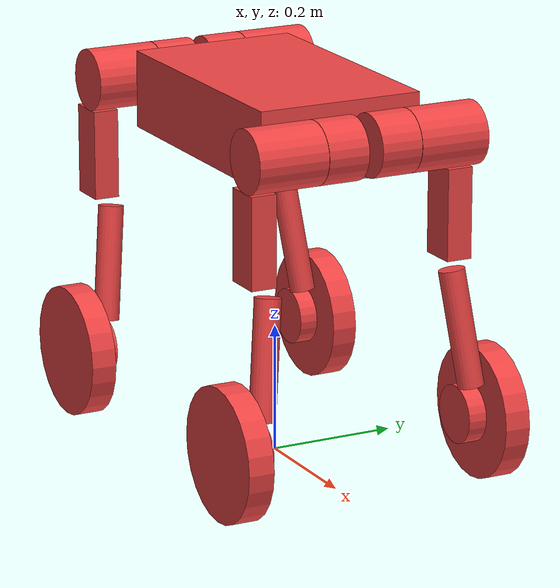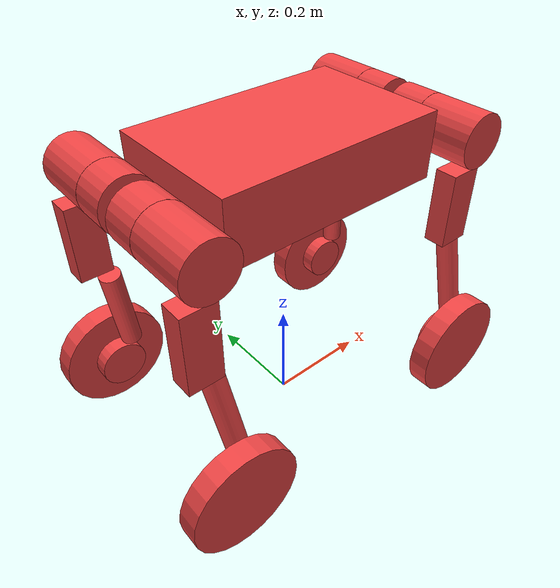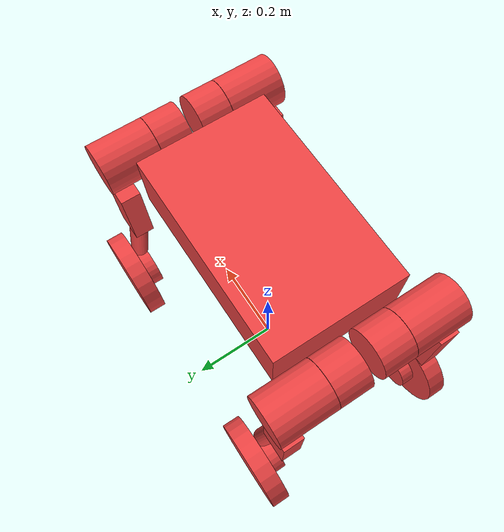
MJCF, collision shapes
<mujoco model="wheel_dog_urdf">
  <compiler angle="radian" meshdir="meshes" />

  <asset>
    <mesh name="base_link" file="meshes/base_link.STL" />
    <mesh name="LF_ABAD_LINK" file="meshes/LF_ABAD_LINK.STL" />
    <mesh name="LF_HIP_LINK" file="meshes/LF_HIP_LINK.STL" />
    <mesh name="LF_KENN_LINK" file="meshes/LF_KENN_LINK.STL" />
    <mesh name="LF_FOOT_LINK" file="meshes/LF_FOOT_LINK.STL" />
    <mesh name="RF_ABAD_LINK" file="meshes/RF_ABAD_LINK.STL" />
    <mesh name="RF_HIP_LINK" file="meshes/RF_HIP_LINK.STL" />
    <mesh name="RF_KENN_LINK" file="meshes/RF_KENN_LINK.STL" />
    <mesh name="RF_FOOT_LINK" file="meshes/RF_FOOT_LINK.STL" />
    <mesh name="LB_ABAD_LINK" file="meshes/LB_ABAD_LINK.STL" />
    <mesh name="LB_HIP_LINK" file="meshes/LB_HIP_LINK.STL" />
    <mesh name="LB_KENN_LINK" file="meshes/LB_KENN_LINK.STL" />
    <mesh name="LB_FOOT_LINK" file="meshes/LB_FOOT_LINK.STL" />
    <mesh name="RB_ABAD_LINK" file="meshes/RB_ABAD_LINK.STL" />
    <mesh name="RB_HIP_LINK" file="meshes/RB_HIP_LINK.STL" />
    <mesh name="RB_KENN_LINK" file="meshes/RB_KENN_LINK.STL" />
    <mesh name="RB_FOOT_LINK" file="meshes/RB_FOOT_LINK.STL" />
    <material name="base_link_mat" rgba="1 1 1 1" specular="0" />
    <material name="LF_ABAD_LINK_mat" rgba="1 1 1 1" specular="0" />
    <material name="LF_HIP_LINK_mat" rgba="1 1 1 1" specular="0" />
    <material name="LF_KENN_LINK_mat" rgba="1 1 1 1" specular="0" />
    <material name="LF_FOOT_LINK_mat" rgba="0.251 0.251 0.251 1" specular="0" />
    <material name="RF_ABAD_LINK_mat" rgba="1 1 1 1" specular="0" />
    <material name="RF_HIP_LINK_mat" rgba="1 1 1 1" specular="0" />
    <material name="RF_KENN_LINK_mat" rgba="1 1 1 1" specular="0" />
    <material name="RF_FOOT_LINK_mat" rgba="0.251 0.251 0.251 1" specular="0" />
    <material name="LB_ABAD_LINK_mat" rgba="1 1 1 1" specular="0" />
    <material name="LB_HIP_LINK_mat" rgba="1 1 1 1" specular="0" />
    <material name="LB_KENN_LINK_mat" rgba="1 1 1 1" specular="0" />
    <material name="LB_FOOT_LINK_mat" rgba="0.251 0.251 0.251 1" specular="0" />
    <material name="RB_ABAD_LINK_mat" rgba="1 1 1 1" specular="0" />
    <material name="RB_HIP_LINK_mat" rgba="1 1 1 1" specular="0" />
    <material name="RB_KENN_LINK_mat" rgba="1 1 1 1" specular="0" />
    <material name="RB_FOOT_LINK_mat" rgba="0.251 0.251 0.251 1" specular="0" />
  </asset>

  <worldbody>
    <body name="base_link" pos="0 0 0.54">
      <camera name="camera1" mode="targetbody" pos="-2.5 0 1.6" target="base_link"/>
      <freejoint/>
      <site name="imu" size="0.01" pos="0.0 0.0 0.0"/>
      <inertial pos="-0.0064993 -0.0009295 0.0021204" mass="7.4975959" fullinertia="0.0589761 0.1812866 0.2224493 0.0000143 0.000089 0.0004461"/>
      <geom pos="0 0 0" group="1" contype="0" conaffinity="0" material="base_link_mat" type="mesh" mesh="base_link" />
      <geom pos="0 0 0" rgba="0.9373 0.2667 0.2667 1" group="3" contype="0" conaffinity="1" friction="1.5 1.2 1.0" type="box" size="0.21 0.13 0.06" />
      <body name="LF_ABAD_LINK" pos="0.26915 0.07715 0.007">
        <joint name="LF_ABAD_JOINT" frictionloss="0.2" type="hinge" axis="1 0 0" limited="true" range="-1 1" />
        <inertial pos="-0.0009598 -0.0317346 0" mass="0.8603295" fullinertia="0.0006379 0.0007923 0.0006889 0.0000452 0 0"/>
        <geom pos="0 0 0" group="1" contype="0" conaffinity="0" material="LF_ABAD_LINK_mat" type="mesh" mesh="LF_ABAD_LINK" />
        <geom pos="0 -0.034 0" quat="0.7071068 0.7071068 0 0" rgba="0.9373 0.2667 0.2667 1" group="3" contype="0" conaffinity="1" friction="1.5 1.2 1.0" type="cylinder" size="0.048 0.032" />
        <body name="LF_HIP_LINK" pos="0 0.0674 0">
          <joint name="LF_HIP_JOINT" frictionloss="0.2" type="hinge" axis="0 1 0" limited="true" range="-1.57 3.49" />
          <inertial pos="-0.0028159 -0.0294115 -0.0241435" mass="1.3307055" fullinertia="0.0057683 0.0055296 0.0015633 0.0001375 -0.0003075 0.000976"/>
          <geom pos="0 0 0" group="1" contype="0" conaffinity="0" material="LF_HIP_LINK_mat" type="mesh" mesh="LF_HIP_LINK" />
          <geom pos="0 -0.014 0" quat="0.7071068 0.7071068 0 0" rgba="0.9373 0.2667 0.2667 1" group="3" contype="0" conaffinity="1" friction="1.5 1.2 1.0" type="cylinder" size="0.048 0.055" />
          <geom pos="-0.02 0.016 -0.12" quat="0.7071068 0.7071068 0 0" rgba="0.9373 0.2667 0.2667 1" group="3" contype="0" conaffinity="1" friction="1.5 1.2 1.0" type="box" size="0.03 0.07 0.02" />
          <body name="LF_KENN_LINK" pos="0 0.011764 -0.2125">
            <joint name="LF_KENN_JOINT" frictionloss="0.2" type="hinge" axis="0 1 0" limited="true" range="-2.7 -0.83" />
            <inertial pos="0.0039019 0.0253379 -0.1888436" mass="0.636513" fullinertia="0.0027405 0.002845 0.0003994 0.0000325 -0.0001755 0.0003959"/>
            <geom pos="0 0 0" group="1" contype="0" conaffinity="0" material="LF_KENN_LINK_mat" type="mesh" mesh="LF_KENN_LINK" />
            <geom pos="0.016 0.006 -0.08" quat="0.9957034 0.0608998 -0.0696263 0.0042585" rgba="0.9373 0.2667 0.2667 1" group="3" contype="0" conaffinity="1" friction="1.5 1.2 1.0" type="cylinder" size="0.02 0.09" />
            <geom pos="0 0.021 -0.22" quat="0.7071068 0.7071068 0 0" rgba="0.9373 0.2667 0.2667 1" group="3" contype="0" conaffinity="1" friction="1.5 1.2 1.0" type="cylinder" size="0.045 0.015" />
            <body name="LF_FOOT_LINK" pos="0 0.052 -0.22006">
              <joint name="LF_FOOT_JOINT" frictionloss="0.2" type="hinge" axis="0 1 0" />
              <inertial pos="-0.0000842 0.0012423 -0.0000301" mass="0.4354423" fullinertia="0.0012979 0.0024981 0.001296 0 0.0000008 0"/>
              <geom pos="0 0 0" group="1" contype="0" conaffinity="0" material="LF_FOOT_LINK_mat" type="mesh" mesh="LF_FOOT_LINK" />
              <geom pos="0.0000371 0.003 -0.0000005" quat="0.7071068 0.7071068 0 0" rgba="0.9373 0.2667 0.2667 1" group="3" contype="0" conaffinity="1" friction="1.5 1.2 1.0" type="cylinder" size="0.1025 0.02" />
            </body>
          </body>
        </body>
      </body>
      <body name="RF_ABAD_LINK" pos="0.26915 -0.07715 0.007">
        <joint name="RF_ABAD_JOINT" frictionloss="0.2" type="hinge" axis="1 0 0" limited="true" range="-1 1" />
        <inertial pos="-0.0009598 0.0317346 0" mass="0.8603295" fullinertia="0.0006379 0.0007923 0.0006889 -0.0000452 0 0"/>
        <geom pos="0 0 0" group="1" contype="0" conaffinity="0" material="RF_ABAD_LINK_mat" type="mesh" mesh="RF_ABAD_LINK" />
        <geom pos="0 0.034 0" quat="0.7071068 -0.7071068 0 0" rgba="0.9373 0.2667 0.2667 1" group="3" contype="0" conaffinity="1" friction="1.5 1.2 1.0" type="cylinder" size="0.048 0.032" />
        <body name="RF_HIP_LINK" pos="0 -0.0674 0">
          <joint name="RF_HIP_JOINT" frictionloss="0.2" type="hinge" axis="0 1 0" limited="true" range="-1.57 3.49" />
          <inertial pos="-0.0028159 0.0294115 -0.0241435" mass="1.3307055" fullinertia="0.0057683 0.0055296 0.0015633 -0.0001375 -0.0003075 -0.000976"/>
          <geom pos="0 0 0" group="1" contype="0" conaffinity="0" material="RF_HIP_LINK_mat" type="mesh" mesh="RF_HIP_LINK" />
          <geom pos="0 0.014 0" quat="0.7071068 -0.7071068 0 0" rgba="0.9373 0.2667 0.2667 1" group="3" contype="0" conaffinity="1" friction="1.5 1.2 1.0" type="cylinder" size="0.048 0.055" />
          <geom pos="-0.02 -0.016 -0.12" quat="0.7071068 -0.7071068 0 0" rgba="0.9373 0.2667 0.2667 1" group="3" contype="0" conaffinity="1" friction="1.5 1.2 1.0" type="box" size="0.03 0.07 0.02" />
          <body name="RF_KENN_LINK" pos="0 -0.011764 -0.2125">
            <joint name="RF_KENN_JOINT" frictionloss="0.2" type="hinge" axis="0 1 0" limited="true" range="-2.7 -0.83" />
            <inertial pos="0.0039019 -0.0253379 -0.1888436" mass="0.636513" fullinertia="0.0027405 0.002845 0.0003994 -0.0000325 -0.0001755 -0.0003959"/>
            <geom pos="0 0 0" group="1" contype="0" conaffinity="0" material="RF_KENN_LINK_mat" type="mesh" mesh="RF_KENN_LINK" />
            <geom pos="0.016 -0.006 -0.08" quat="0.9957034 -0.0608998 -0.0696263 -0.0042585" rgba="0.9373 0.2667 0.2667 1" group="3" contype="0" conaffinity="1" friction="1.5 1.2 1.0" type="cylinder" size="0.02 0.09" />
            <geom pos="0 -0.021 -0.22" quat="0.7071068 -0.7071068 0 0" rgba="0.9373 0.2667 0.2667 1" group="3" contype="0" conaffinity="1" friction="1.5 1.2 1.0" type="cylinder" size="0.045 0.015" />
            <body name="RF_FOOT_LINK" pos="0 -0.052 -0.22006">
              <joint name="RF_FOOT_JOINT" frictionloss="0.2" type="hinge" axis="0 1 0" />
              <inertial pos="-0.0000842 -0.0012423 -0.0000301" mass="0.4354423" fullinertia="0.0012979 0.0024981 0.001296 0 0.0000008 0"/>
              <geom pos="0 0 0" group="1" contype="0" conaffinity="0" material="RF_FOOT_LINK_mat" type="mesh" mesh="RF_FOOT_LINK" />
              <geom pos="0.0000371 -0.003 -0.0000005" quat="0.7071068 -0.7071068 0 0" rgba="0.9373 0.2667 0.2667 1" group="3" contype="0" conaffinity="1" friction="1.5 1.2 1.0" type="cylinder" size="0.1025 0.02" />
            </body>
          </body>
        </body>
      </body>
      <body name="LB_ABAD_LINK" pos="-0.26885 0.07715 0.007">
        <joint name="LB_ABAD_JOINT" frictionloss="0.2" type="hinge" axis="1 0 0" limited="true" range="-1 1" />
        <inertial pos="0.0009598 -0.0317346 0" mass="0.8603295" fullinertia="0.0006379 0.0007923 0.0006889 -0.0000452 0 0"/>
        <geom pos="0 0 0" group="1" contype="0" conaffinity="0" material="LB_ABAD_LINK_mat" type="mesh" mesh="LB_ABAD_LINK" />
        <geom pos="0 -0.034 0" quat="0.7071068 0.7071068 0 0" rgba="0.9373 0.2667 0.2667 1" group="3" contype="0" conaffinity="1" friction="1.5 1.2 1.0" type="cylinder" size="0.048 0.032" />
        <body name="LB_HIP_LINK" pos="0 0.0674 0">
          <joint name="LB_HIP_JOINT" frictionloss="0.2" type="hinge" axis="0 1 0" limited="true" range="-1.57 3.49" />
          <inertial pos="-0.0027582 -0.0294115 -0.0240635" mass="1.3307055" fullinertia="0.0057764 0.0055352 0.0015608 0.0001403 -0.0003087 0.0009799"/>
          <geom pos="0 0 0" group="1" contype="0" conaffinity="0" material="LB_HIP_LINK_mat" type="mesh" mesh="LB_HIP_LINK" />
          <geom pos="0 -0.014 0" quat="0.7071068 0.7071068 0 0" rgba="0.9373 0.2667 0.2667 1" group="3" contype="0" conaffinity="1" friction="1.5 1.2 1.0" type="cylinder" size="0.048 0.055" />
          <geom pos="-0.02 0.016 -0.12" quat="0.7071068 0.7071068 0 0" rgba="0.9373 0.2667 0.2667 1" group="3" contype="0" conaffinity="1" friction="1.5 1.2 1.0" type="box" size="0.03 0.07 0.0200005" />
          <body name="LB_KENN_LINK" pos="0 0.011764 -0.2125">
            <joint name="LB_KENN_JOINT" frictionloss="0.2" type="hinge" axis="0 1 0" limited="true" range="-2.7 -0.83" />
            <inertial pos="0.0039019 0.0253379 -0.1888436" mass="0.636513" fullinertia="0.0027405 0.002845 0.0003994 0.0000325 -0.0001755 0.0003959"/>
            <geom pos="0 0 0" group="1" contype="0" conaffinity="0" material="LB_KENN_LINK_mat" type="mesh" mesh="LB_KENN_LINK" />
            <geom pos="0.016 0.006 -0.08" quat="0.9957034 0.0608998 -0.0696263 0.0042585" rgba="0.9373 0.2667 0.2667 1" group="3" contype="0" conaffinity="1" friction="1.5 1.2 1.0" type="cylinder" size="0.02 0.09" />
            <geom pos="0 0.021 -0.22" quat="0.7071068 0.7071068 0 0" rgba="0.9373 0.2667 0.2667 1" group="3" contype="0" conaffinity="1" friction="1.5 1.2 1.0" type="cylinder" size="0.045 0.015" />
            <body name="LB_FOOT_LINK" pos="0 0.052 -0.22006">
              <joint name="LB_FOOT_JOINT" frictionloss="0.2" type="hinge" axis="0 1 0" />
              <inertial pos="-0.0000548 0.0044286 -0.0000713" mass="0.4354423" fullinertia="0.0012966 0.0024981 0.0012973 0 0.0000012 0"/>
              <geom pos="0 0 0" group="1" contype="0" conaffinity="0" material="LB_FOOT_LINK_mat" type="mesh" mesh="LB_FOOT_LINK" />
              <geom pos="0.0000371 0.003 -0.0000005" quat="0.7071068 0.7071068 0 0" rgba="0.9373 0.2667 0.2667 1" group="3" contype="0" conaffinity="1" friction="1.5 1.2 1.0" type="cylinder" size="0.1025 0.02" />
            </body>
          </body>
        </body>
      </body>
      <body name="RB_ABAD_LINK" pos="-0.26885 -0.07715 0.007">
        <joint name="RB_ABAD_JOINT" frictionloss="0.2" type="hinge" axis="1 0 0" limited="true" range="-1 1" />
        <inertial pos="0.0009598 0.0317346 0" mass="0.8603295" fullinertia="0.0006379 0.0007923 0.0006889 0.0000452 0 0"/>
        <geom pos="0 0 0" group="1" contype="0" conaffinity="0" material="RB_ABAD_LINK_mat" type="mesh" mesh="RB_ABAD_LINK" />
        <geom pos="0 0.034 0" quat="0.7071068 -0.7071068 0 0" rgba="0.9373 0.2667 0.2667 1" group="3" contype="0" conaffinity="1" friction="1.5 1.2 1.0" type="cylinder" size="0.048 0.032" />
        <body name="RB_HIP_LINK" pos="0 -0.0674 0">
          <joint name="RB_HIP_JOINT" frictionloss="0.2" type="hinge" axis="0 1 0" limited="true" range="-1.57 3.49" />
          <inertial pos="-0.0027582 0.0294115 -0.0240635" mass="1.3307055" fullinertia="0.0057764 0.0055352 0.0015608 -0.0001403 -0.0003087 -0.0009799"/>
          <geom pos="0 0 0" group="1" contype="0" conaffinity="0" material="RB_HIP_LINK_mat" type="mesh" mesh="RB_HIP_LINK" />
          <geom pos="0 0.014 0" quat="0.7071068 -0.7071068 0 0" rgba="0.9373 0.2667 0.2667 1" group="3" contype="0" conaffinity="1" friction="1.5 1.2 1.0" type="cylinder" size="0.048 0.055" />
          <geom pos="-0.02 -0.016 -0.12" quat="0.7071068 -0.7071068 0 0" rgba="0.9373 0.2667 0.2667 1" group="3" contype="0" conaffinity="1" friction="1.5 1.2 1.0" type="box" size="0.03 0.07 0.0200005" />
          <body name="RB_KENN_LINK" pos="0 -0.011764 -0.2125">
            <joint name="RB_KENN_JOINT" frictionloss="0.2" type="hinge" axis="0 1 0" limited="true" range="-2.7 -0.83" />
            <inertial pos="0.0039019 -0.0253379 -0.1888436" mass="0.636513" fullinertia="0.0027405 0.002845 0.0003994 -0.0000325 -0.0001755 -0.0003959"/>
            <geom pos="0 0 0" group="1" contype="0" conaffinity="0" material="RB_KENN_LINK_mat" type="mesh" mesh="RB_KENN_LINK" />
            <geom pos="0.016 -0.006 -0.08" quat="0.9957034 -0.0608998 -0.0696263 -0.0042585" rgba="0.9373 0.2667 0.2667 1" group="3" contype="0" conaffinity="1" friction="1.5 1.2 1.0" type="cylinder" size="0.02 0.09" />
            <geom pos="0 -0.021 -0.22" quat="0.7071068 -0.7071068 0 0" rgba="0.9373 0.2667 0.2667 1" group="3" contype="0" conaffinity="1" friction="1.5 1.2 1.0" type="cylinder" size="0.045 0.015" />
            <body name="RB_FOOT_LINK" pos="0 -0.052 -0.22006">
              <joint name="RB_FOOT_JOINT" frictionloss="0.2" type="hinge" axis="0 1 0" />
              <inertial pos="-0.0000548 -0.0044286 -0.0000713" mass="0.4354423" fullinertia="0.0012966 0.0024981 0.0012973 0 0.0000012 0"/>
              <geom pos="0 0 0" group="1" contype="0" conaffinity="0" material="RB_FOOT_LINK_mat" type="mesh" mesh="RB_FOOT_LINK" />
              <geom pos="0.0000371 -0.003 -0.0000005" quat="0.7071068 -0.7071068 0 0" rgba="0.9373 0.2667 0.2667 1" group="3" contype="0" conaffinity="1" friction="1.5 1.2 1.0" type="cylinder" size="0.1025 0.02" />
            </body>
          </body>
        </body>
      </body>
    </body>
  </worldbody>
  <actuator>

    <position name="LF_ABAD_JOINT" joint="LF_ABAD_JOINT"  forcelimited="true" forcerange="-36. 36." ctrlrange="-1 1"       armature="0.01" kp="66." kv="4."/>
    <position name="LF_HIP_JOINT" joint="LF_HIP_JOINT"    forcelimited="true" forcerange="-36. 36." ctrlrange="-1.57 3.49" armature="0.01" kp="66." kv="4."/>
    <position name="LF_KENN_JOINT" joint="LF_KENN_JOINT"  forcelimited="true" forcerange="-36. 36." ctrlrange="-2.7 -0.83" armature="0.01" kp="66." kv="4."/>
    <velocity name="LF_FOOT_JOINT" joint="LF_FOOT_JOINT"  forcelimited="true" forcerange="-20. 20." ctrlrange="-20. 20."   armature="0.01" kv="3.5"/>
    <position name="RF_ABAD_JOINT" joint="RF_ABAD_JOINT"  forcelimited="true" forcerange="-36. 36." ctrlrange="-1 1"       armature="0.01" kp="66." kv="4."/>
    <position name="RF_HIP_JOINT" joint="RF_HIP_JOINT"    forcelimited="true" forcerange="-36. 36." ctrlrange="-1.57 3.49" armature="0.01" kp="66." kv="4."/>
    <position name="RF_KENN_JOINT" joint="RF_KENN_JOINT"  forcelimited="true" forcerange="-36. 36." ctrlrange="-2.7 -0.83" armature="0.01" kp="66." kv="4."/>
    <velocity name="RF_FOOT_JOINT" joint="RF_FOOT_JOINT"  forcelimited="true" forcerange="-20. 20." ctrlrange="-20. 20."   armature="0.01" kv="3.5"/>
    <position name="LB_ABAD_JOINT" joint="LB_ABAD_JOINT"  forcelimited="true" forcerange="-36. 36." ctrlrange="-1 1"       armature="0.01" kp="66." kv="4."/>
    <position name="LB_HIP_JOINT" joint="LB_HIP_JOINT"    forcelimited="true" forcerange="-36. 36." ctrlrange="-1.57 3.49" armature="0.01" kp="66." kv="4."/>
    <position name="LB_KENN_JOINT" joint="LB_KENN_JOINT"  forcelimited="true" forcerange="-36. 36." ctrlrange="-2.7 -0.83" armature="0.01" kp="66." kv="4."/>
    <velocity name="LB_FOOT_JOINT" joint="LB_FOOT_JOINT"  forcelimited="true" forcerange="-20. 20." ctrlrange="-20. 20."   armature="0.01" kv="3.5"/>
    <position name="RB_ABAD_JOINT" joint="RB_ABAD_JOINT"  forcelimited="true" forcerange="-36. 36." ctrlrange="-1 1"       armature="0.01" kp="66." kv="4."/>
    <position name="RB_HIP_JOINT" joint="RB_HIP_JOINT"    forcelimited="true" forcerange="-36. 36." ctrlrange="-1.57 3.49" armature="0.01" kp="66." kv="4."/>
    <position name="RB_KENN_JOINT" joint="RB_KENN_JOINT"  forcelimited="true" forcerange="-36. 36." ctrlrange="-2.7 -0.83" armature="0.01" kp="66." kv="4."/>
    <velocity name="RB_FOOT_JOINT" joint="RB_FOOT_JOINT"  forcelimited="true" forcerange="-20. 20." ctrlrange="-20. 20."   armature="0.01" kv="3.5"/>

  </actuator>

  <sensor>
    <actuatorpos name="LF_ABAD_JOINT_p" actuator="LF_ABAD_JOINT"/>
    <actuatorpos name="LF_HIP_JOINT_p" actuator="LF_HIP_JOINT"/>
    <actuatorpos name="LF_KENN_JOINT_p" actuator="LF_KENN_JOINT"/>
    <actuatorpos name="LF_FOOT_JOINT_p" actuator="LF_FOOT_JOINT"/>
    <actuatorpos name="RF_ABAD_JOINT_p" actuator="RF_ABAD_JOINT"/>
    <actuatorpos name="RF_HIP_JOINT_p" actuator="RF_HIP_JOINT"/>
    <actuatorpos name="RF_KENN_JOINT_p" actuator="RF_KENN_JOINT"/>
    <actuatorpos name="RF_FOOT_JOINT_p" actuator="RF_FOOT_JOINT"/>
    <actuatorpos name="LB_ABAD_JOINT_p" actuator="LB_ABAD_JOINT"/>
    <actuatorpos name="LB_HIP_JOINT_p" actuator="LB_HIP_JOINT"/>
    <actuatorpos name="LB_KENN_JOINT_p" actuator="LB_KENN_JOINT"/>
    <actuatorpos name="LB_FOOT_JOINT_p" actuator="LB_FOOT_JOINT"/>
    <actuatorpos name="RB_ABAD_JOINT_p" actuator="RB_ABAD_JOINT"/>
    <actuatorpos name="RB_HIP_JOINT_p" actuator="RB_HIP_JOINT"/>
    <actuatorpos name="RB_KENN_JOINT_p" actuator="RB_KENN_JOINT"/>
    <actuatorpos name="RB_FOOT_JOINT_p" actuator="RB_FOOT_JOINT"/>

    <actuatorvel name="LF_ABAD_JOINT_v" actuator="LF_ABAD_JOINT"/>
    <actuatorvel name="LF_HIP_JOINT_v" actuator="LF_HIP_JOINT"/>
    <actuatorvel name="LF_KENN_JOINT_v" actuator="LF_KENN_JOINT"/>
    <actuatorvel name="LF_FOOT_JOINT_v" actuator="LF_FOOT_JOINT"/>
    <actuatorvel name="RF_ABAD_JOINT_v" actuator="RF_ABAD_JOINT"/>
    <actuatorvel name="RF_HIP_JOINT_v" actuator="RF_HIP_JOINT"/>
    <actuatorvel name="RF_KENN_JOINT_v" actuator="RF_KENN_JOINT"/>
    <actuatorvel name="RF_FOOT_JOINT_v" actuator="RF_FOOT_JOINT"/>
    <actuatorvel name="LB_ABAD_JOINT_v" actuator="LB_ABAD_JOINT"/>
    <actuatorvel name="LB_HIP_JOINT_v" actuator="LB_HIP_JOINT"/>
    <actuatorvel name="LB_KENN_JOINT_v" actuator="LB_KENN_JOINT"/>
    <actuatorvel name="LB_FOOT_JOINT_v" actuator="LB_FOOT_JOINT"/>
    <actuatorvel name="RB_ABAD_JOINT_v" actuator="RB_ABAD_JOINT"/>
    <actuatorvel name="RB_HIP_JOINT_v" actuator="RB_HIP_JOINT"/>
    <actuatorvel name="RB_KENN_JOINT_v" actuator="RB_KENN_JOINT"/>
    <actuatorvel name="RB_FOOT_JOINT_v" actuator="RB_FOOT_JOINT"/>

    <actuatorfrc name="LF_ABAD_JOINT_f" actuator="LF_ABAD_JOINT" />
    <actuatorfrc name="LF_HIP_JOINT_f" actuator="LF_HIP_JOINT" />
    <actuatorfrc name="LF_KENN_JOINT_f" actuator="LF_KENN_JOINT" />
    <actuatorfrc name="LF_FOOT_JOINT_f" actuator="LF_FOOT_JOINT" />
    <actuatorfrc name="RF_ABAD_JOINT_f" actuator="RF_ABAD_JOINT" />
    <actuatorfrc name="RF_HIP_JOINT_f" actuator="RF_HIP_JOINT" />
    <actuatorfrc name="RF_KENN_JOINT_f" actuator="RF_KENN_JOINT" />
    <actuatorfrc name="RF_FOOT_JOINT_f" actuator="RF_FOOT_JOINT" />
    <actuatorfrc name="LB_ABAD_JOINT_f" actuator="LB_ABAD_JOINT" />
    <actuatorfrc name="LB_HIP_JOINT_f" actuator="LB_HIP_JOINT" />
    <actuatorfrc name="LB_KENN_JOINT_f" actuator="LB_KENN_JOINT" />
    <actuatorfrc name="LB_FOOT_JOINT_f" actuator="LB_FOOT_JOINT" />
    <actuatorfrc name="RB_ABAD_JOINT_f" actuator="RB_ABAD_JOINT" />
    <actuatorfrc name="RB_HIP_JOINT_f" actuator="RB_HIP_JOINT" />
    <actuatorfrc name="RB_KENN_JOINT_f" actuator="RB_KENN_JOINT" />
    <actuatorfrc name="RB_FOOT_JOINT_f" actuator="RB_FOOT_JOINT" />

    <framequat name="imu_quat" objtype="site" objname="imu" />
    <framepos name="motor" objtype="site" objname="imu" />
    <gyro name="imu_gyro" site="imu" cutoff="50"/>
    <velocimeter name="imu_lin_vel" site="imu" cutoff="30"/>
    <accelerometer name="linear-acceleration" site="imu" cutoff="157"/>
    <magnetometer name="magnetometer" site="imu"/>
  </sensor>

</mujoco>
